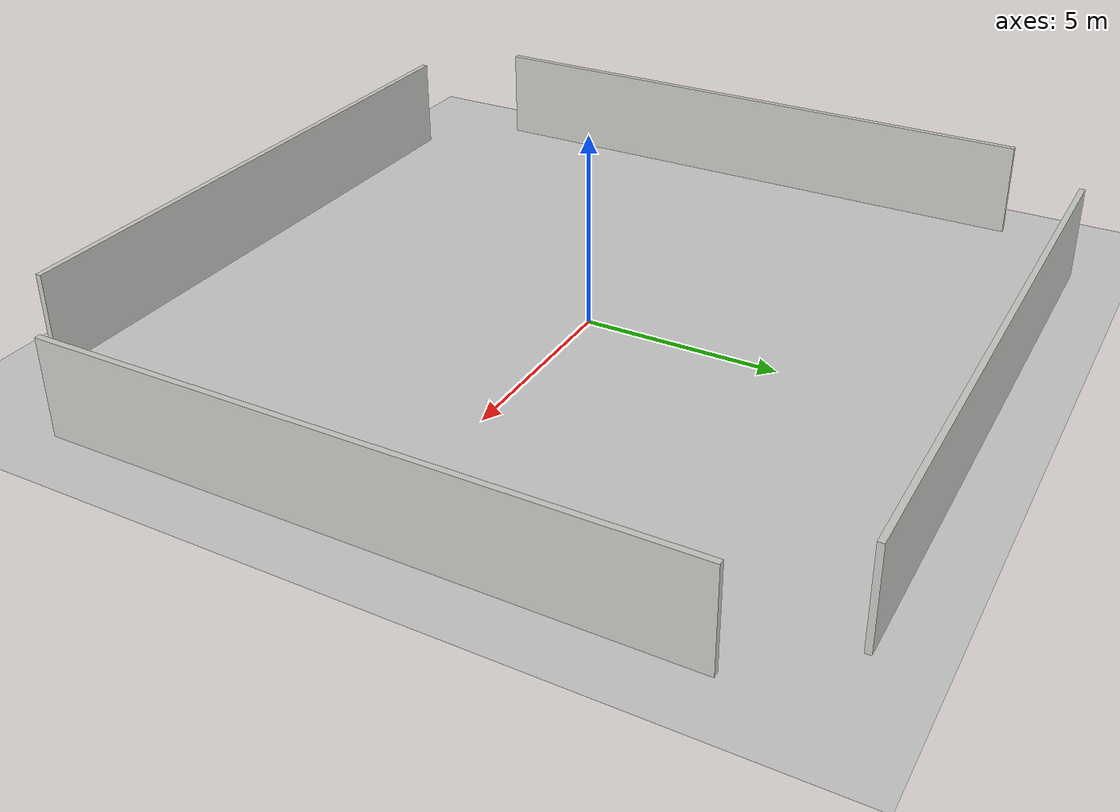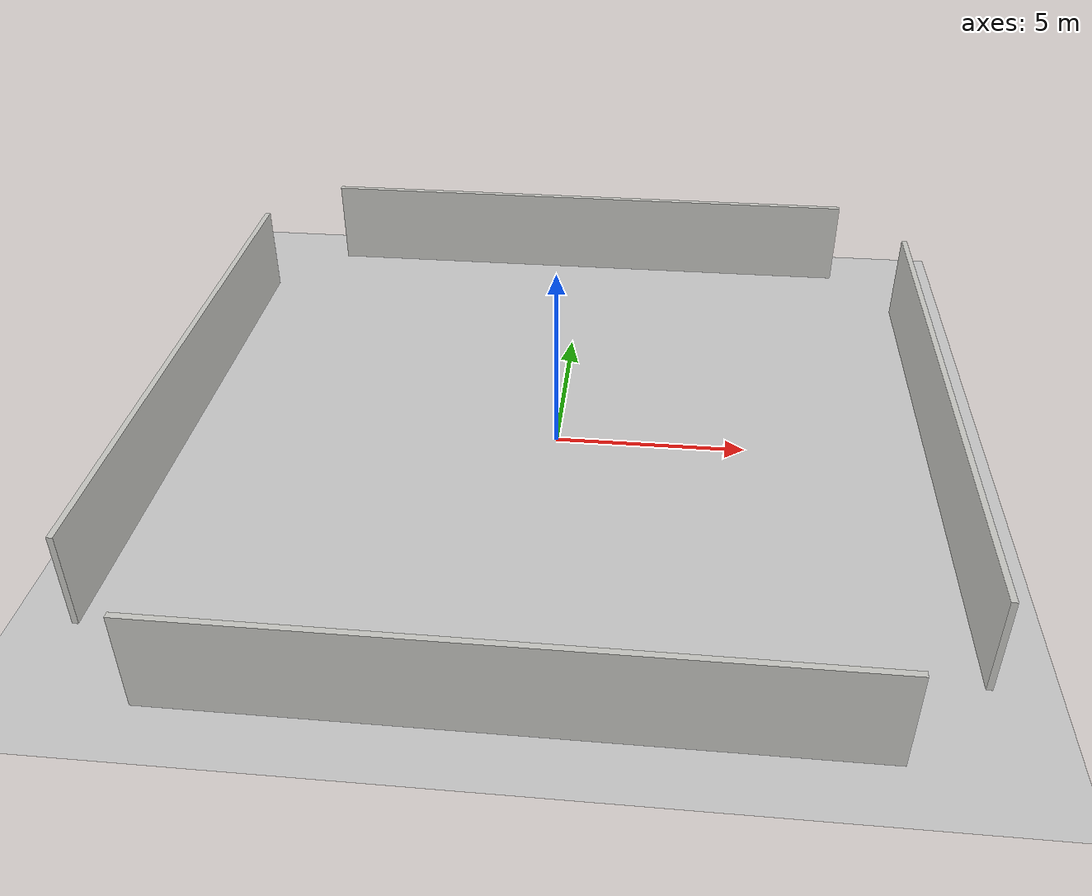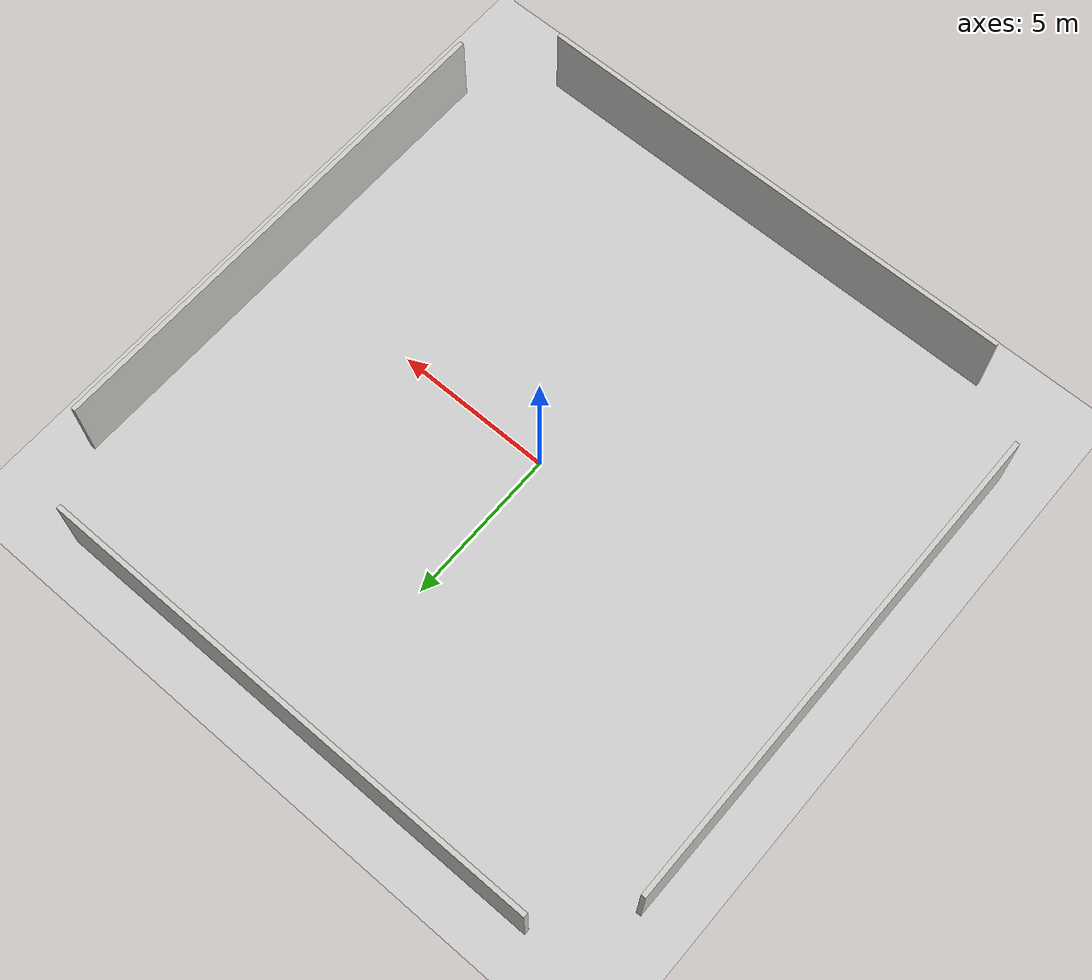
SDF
<sdf version="1.7">
 <world name="default">
  <light name="sun" type="directional">
   <pose>0 0 10 0 -0 0</pose>
   <diffuse>0.8 0.8 0.8 1</diffuse>
   <specular>0.2 0.2 0.2 1</specular>
   <attenuation>
    <range>1000</range>
    <constant>0.9</constant>
    <linear>0.01</linear>
    <quadratic>0.001</quadratic>
   </attenuation>
   <direction>-0.5 0.1 -0.9</direction>
   <spot><inner_angle>0</inner_angle><outer_angle>0</outer_angle><falloff>0</falloff></spot>
  </light>
  <model name="ground_plane">
   <static>1</static>
   <link name="link">
    <collision name="collision">
     <geometry><plane><normal>0 0 1</normal><size>100 100</size></plane></geometry>
     <surface><friction><ode><mu>100</mu><mu2>50</mu2></ode></friction></surface>
    </collision>
    <visual name="visual">
     <cast_shadows>0</cast_shadows>
     <geometry><plane><normal>0 0 1</normal><size>100 100</size></plane></geometry>
     <material>
      <script><uri>file://media/materials/scripts/gazebo.material</uri><name>Gazebo/Grey</name></script>
     </material>
    </visual>
   </link>
  </model>
  <gravity>0 0 -9.8</gravity>
  <magnetic_field>6e-06 2.3e-05 -4.2e-05</magnetic_field>
  <atmosphere type="adiabatic"/>
  <physics type="ode">
   <max_step_size>0.001</max_step_size>
   <real_time_factor>1</real_time_factor>
   <real_time_update_rate>1000</real_time_update_rate>
  </physics>
  <scene><ambient>0.4 0.4 0.4 1</ambient><background>0.7 0.7 0.7 1</background><shadows>1</shadows></scene>
  <audio><device>default</device></audio>
  <spherical_coordinates>
   <surface_model>EARTH_WGS84</surface_model>
   <latitude_deg>0</latitude_deg>
   <longitude_deg>0</longitude_deg>
   <elevation>0</elevation>
   <heading_deg>0</heading_deg>
  </spherical_coordinates>
  <model name="Untitled">
   <pose>-0.056729 -0.018101 0 0 -0 0</pose>
   <link name="Wall_34">
    <collision name="Wall_34_Collision">
     <geometry><box><size>16.25 0.15 2.5</size></box></geometry>
     <pose>0 0 1.25 0 -0 0</pose>
    </collision>
    <visual name="Wall_34_Visual">
     <pose>0 0 1.25 0 -0 0</pose>
     <geometry><box><size>16.25 0.15 2.5</size></box></geometry>
     <material>
      <script><uri>file://media/materials/scripts/gazebo.material</uri><name>Gazebo/CeilingTiled</name></script>
      <ambient>1 1 1 1</ambient>
     </material>
     <meta><layer>0</layer></meta>
    </visual>
    <pose>0.052135 10.0067 0 0 -0 0</pose>
   </link>
   <link name="Wall_36">
    <collision name="Wall_36_Collision">
     <geometry><box><size>15.75 0.15 2.5</size></box></geometry>
     <pose>0 0 1.25 0 -0 0</pose>
    </collision>
    <visual name="Wall_36_Visual">
     <pose>0 0 1.25 0 -0 0</pose>
     <geometry><box><size>15.75 0.15 2.5</size></box></geometry>
     <material>
      <script><uri>file://media/materials/scripts/gazebo.material</uri><name>Gazebo/CeilingTiled</name></script>
      <ambient>1 1 1 1</ambient>
     </material>
     <meta><layer>0</layer></meta>
    </visual>
    <pose>-9.92331 -0.05056 0 0 -0 -1.5708</pose>
   </link>
   <link name="Wall_38">
    <collision name="Wall_38_Collision">
     <geometry><box><size>15.75 0.15 2.5</size></box></geometry>
     <pose>0 0 1.25 0 -0 0</pose>
    </collision>
    <visual name="Wall_38_Visual">
     <pose>0 0 1.25 0 -0 0</pose>
     <geometry><box><size>15.75 0.15 2.5</size></box></geometry>
     <material>
      <script><uri>file://media/materials/scripts/gazebo.material</uri><name>Gazebo/CeilingTiled</name></script>
      <ambient>1 1 1 1</ambient>
     </material>
     <meta><layer>0</layer></meta>
    </visual>
    <pose>9.92331 -0.043998 0 0 -0 -1.5708</pose>
   </link>
   <link name="Wall_40">
    <collision name="Wall_40_Collision">
     <geometry><box><size>15.75 0.15 2.5</size></box></geometry>
     <pose>0 0 1.25 0 -0 0</pose>
    </collision>
    <visual name="Wall_40_Visual">
     <pose>0 0 1.25 0 -0 0</pose>
     <geometry><box><size>15.75 0.15 2.5</size></box></geometry>
     <material>
      <script><uri>file://media/materials/scripts/gazebo.material</uri><name>Gazebo/CeilingTiled</name></script>
      <ambient>1 1 1 1</ambient>
     </material>
     <meta><layer>0</layer></meta>
    </visual>
    <pose>0.049473 -10.0067 0 0 -0 0</pose>
   </link>
   <static>1</static>
  </model>
 </world>
</sdf>
